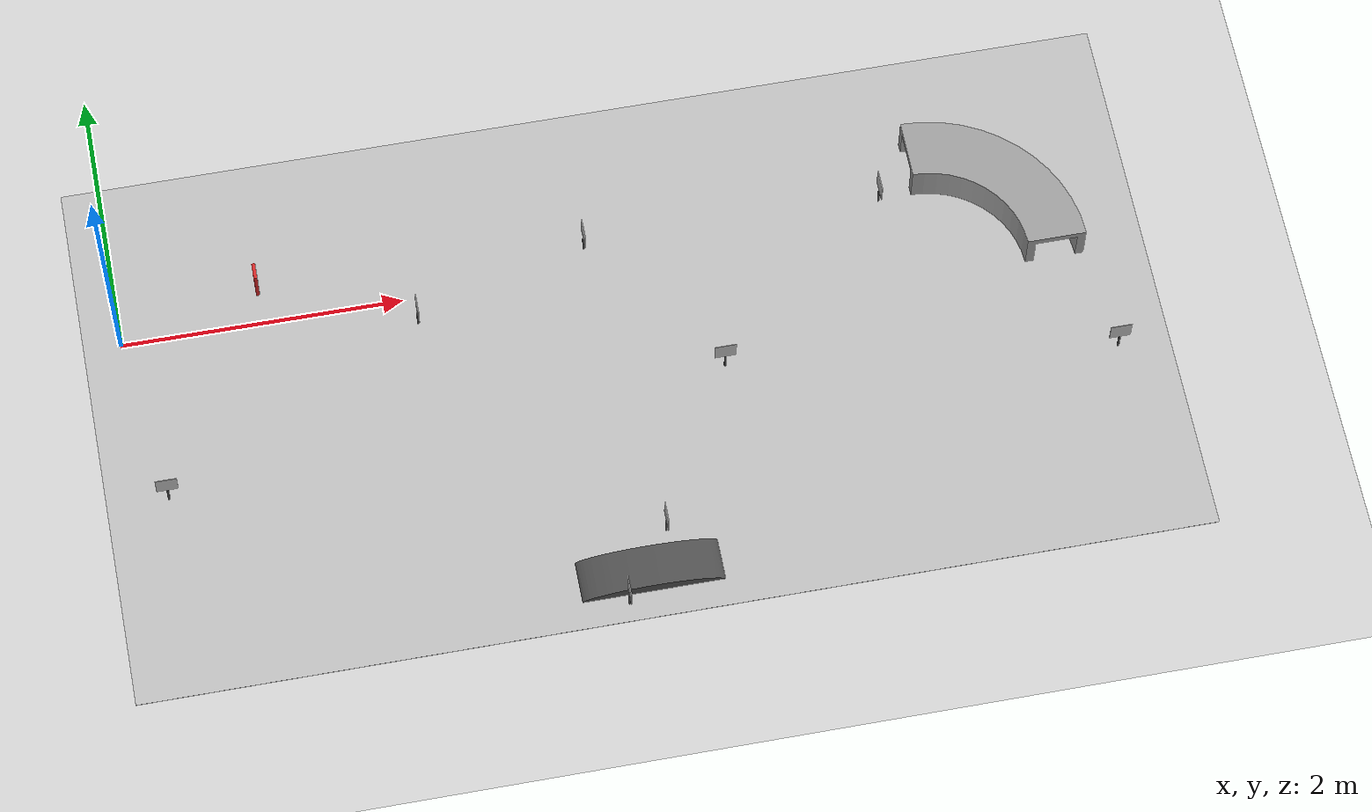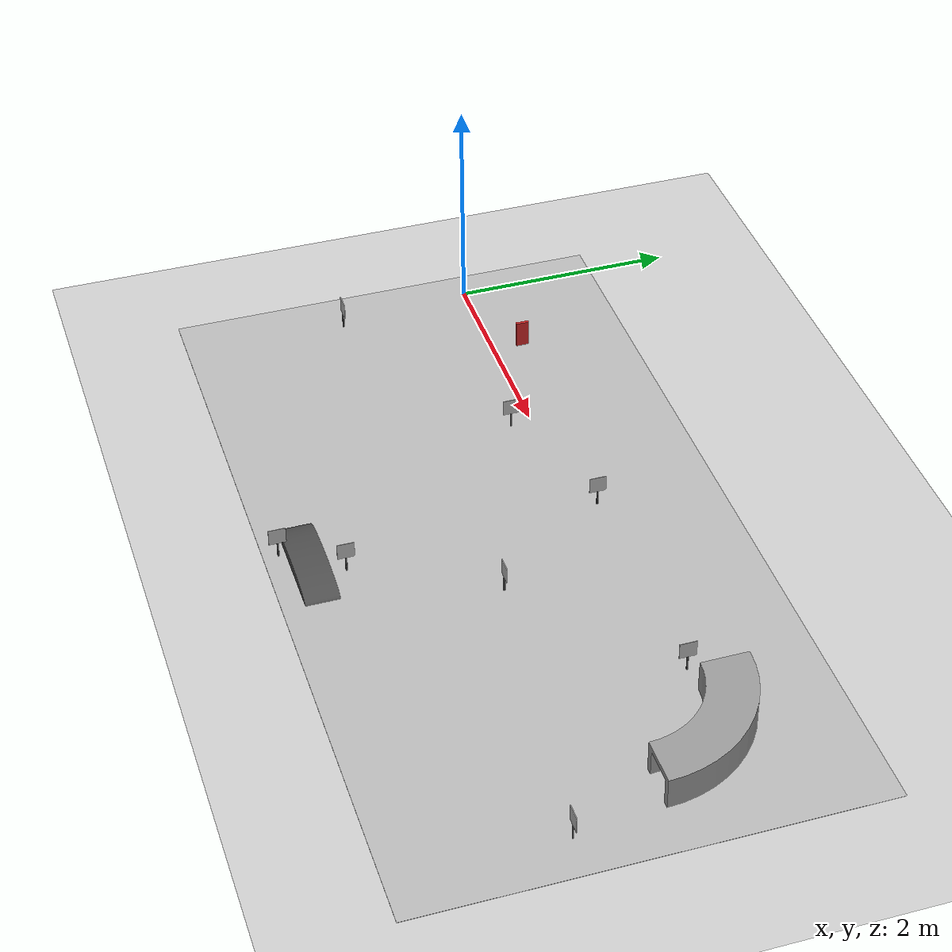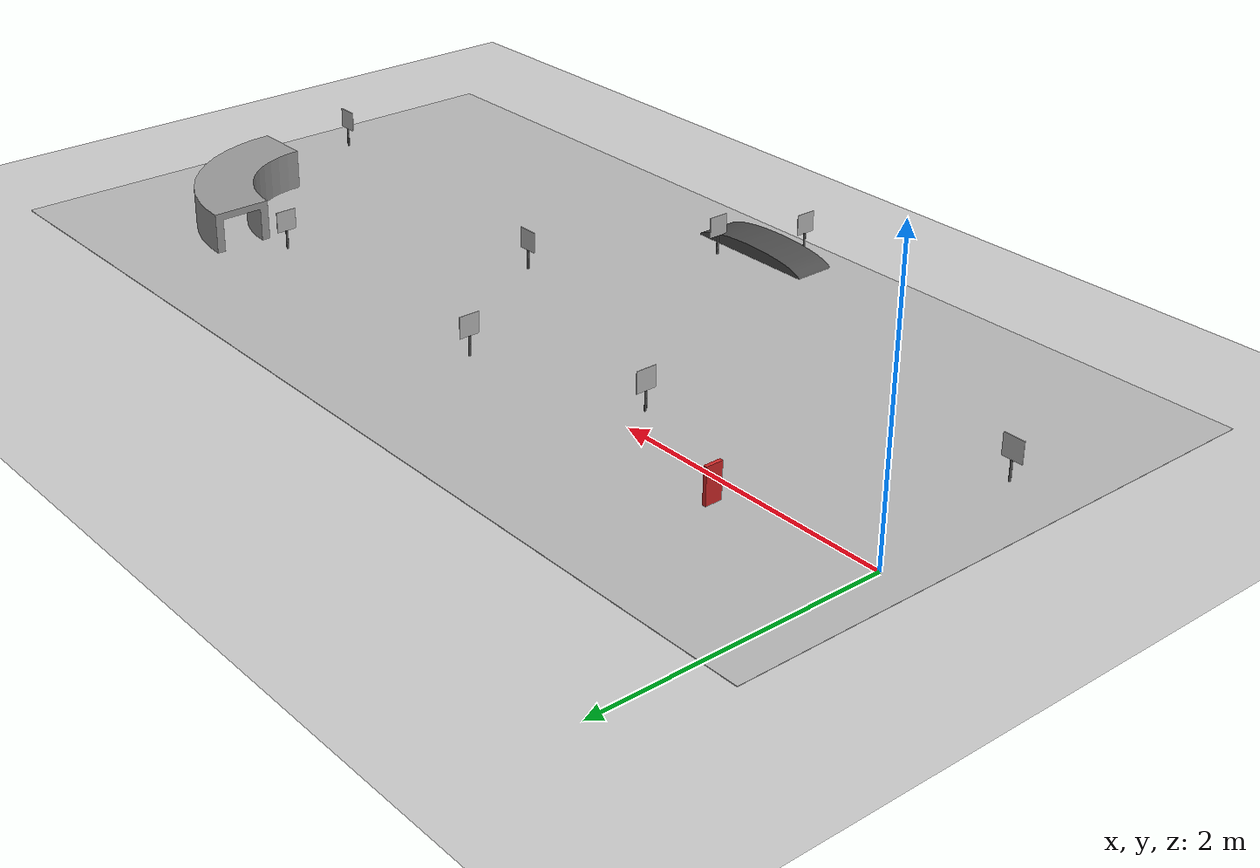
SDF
<sdf version="1.7">
 <world name="default">
  <light name="sun" type="directional">
   <pose>0 0 10 0 -0 0</pose>
   <diffuse>0.8 0.8 0.8 1</diffuse>
   <specular>0.2 0.2 0.2 1</specular>
   <attenuation>
    <range>1000</range>
    <constant>0.9</constant>
    <linear>0.01</linear>
    <quadratic>0.001</quadratic>
   </attenuation>
   <direction>-0.5 0.1 -0.9</direction>
   <spot><inner_angle>0</inner_angle><outer_angle>0</outer_angle><falloff>0</falloff></spot>
  </light>
  <model name="ground_plane">
   <static>1</static>
   <link name="link">
    <collision name="collision">
     <geometry><plane><normal>0 0 1</normal><size>100 100</size></plane></geometry>
     <surface><friction><ode><mu>100</mu><mu2>50</mu2></ode></friction></surface>
    </collision>
    <visual name="visual">
     <cast_shadows>0</cast_shadows>
     <geometry><plane><normal>0 0 1</normal><size>100 100</size></plane></geometry>
     <material>
      <script><uri>file://media/materials/scripts/gazebo.material</uri><name>Gazebo/Grey</name></script>
     </material>
    </visual>
   </link>
  </model>
  <gravity>0 0 -9.8</gravity>
  <magnetic_field>6e-06 2.3e-05 -4.2e-05</magnetic_field>
  <atmosphere type="adiabatic"/>
  <physics type="ode">
   <max_step_size>0.001</max_step_size>
   <real_time_factor>1</real_time_factor>
   <real_time_update_rate>1000</real_time_update_rate>
  </physics>
  <scene><ambient>0.4 0.4 0.4 1</ambient><background>0.7 0.7 0.7 1</background><shadows>1</shadows></scene>
  <audio><device>default</device></audio>
  <spherical_coordinates>
   <surface_model>EARTH_WGS84</surface_model>
   <latitude_deg>0</latitude_deg>
   <longitude_deg>0</longitude_deg>
   <elevation>0</elevation>
   <heading_deg>0</heading_deg>
  </spherical_coordinates>
  <model name="track_nxgv">
   <static>1</static>
   <link name="link">
    <pose>0 0 0.01 0 -0 3.14159</pose>
    <collision name="collision">
     <geometry><plane><normal>0 0 1</normal><size>7.5 4</size></plane></geometry>
     <surface><friction><ode><mu>100</mu><mu2>50</mu2></ode></friction></surface>
    </collision>
    <visual name="visual">
     <cast_shadows>0</cast_shadows>
     <geometry><plane><normal>0 0 1</normal><size>7.5 4</size></plane></geometry>
     <material>
      <script>
       <uri>model://track_nxgv/materials/scripts</uri>
       <uri>model://track_nxgv/materials/textures</uri>
       <name>CustomTrack/Diffuse</name>
      </script>
     </material>
    </visual>
   </link>
   <pose>3.48534 -0.731625 0 0 -0 0</pose>
  </model>
  <model name="custom_parking_sign">
   <static>1</static>
   <link name="link">
    <visual name="pole_visual">
     <pose>0 0 0.075 0 -0 0</pose>
     <geometry><cylinder><radius>0.008</radius><length>0.15</length></cylinder></geometry>
     <material><ambient>0.2 0.2 0.2 1</ambient><diffuse>0.3 0.3 0.3 1</diffuse></material>
    </visual>
    <collision name="pole_collision">
     <pose>0 0 0.075 0 -0 0</pose>
     <geometry><cylinder><radius>0.008</radius><length>0.15</length></cylinder></geometry>
    </collision>
    <visual name="board_visual">
     <pose>0 0 0.225 0 -0 0</pose>
     <geometry><box><size>0.005 0.15 0.15</size></box></geometry>
     <material>
      <script>
       <uri>model://custom_parking_sign/materials/scripts</uri>
       <uri>model://custom_parking_sign/materials/textures</uri>
       <name>custom_parking_mat</name>
      </script>
     </material>
    </visual>
    <collision name="board_collision">
     <pose>0 0 0.225 0 -0 0</pose>
     <geometry><box><size>0.005 0.15 0.15</size></box></geometry>
    </collision>
   </link>
   <pose>3.49036 -2.09733 0 0 -0 0</pose>
  </model>
  <model name="custom_parking_sign_2">
   <static>1</static>
   <link name="link">
    <visual name="pole_visual">
     <pose>0 0 0.075 0 -0 0</pose>
     <geometry><cylinder><radius>0.008</radius><length>0.15</length></cylinder></geometry>
     <material><ambient>0.2 0.2 0.2 1</ambient><diffuse>0.3 0.3 0.3 1</diffuse></material>
    </visual>
    <collision name="pole_collision">
     <pose>0 0 0.075 0 -0 0</pose>
     <geometry><cylinder><radius>0.008</radius><length>0.15</length></cylinder></geometry>
    </collision>
    <visual name="board_visual">
     <pose>0 0 0.225 0 -0 0</pose>
     <geometry><box><size>0.005 0.15 0.15</size></box></geometry>
     <material>
      <script>
       <uri>model://custom_parking_sign_2/materials/scripts</uri>
       <uri>model://custom_parking_sign_2/materials/textures</uri>
       <name>custom_parking_sign_2_mat</name>
      </script>
     </material>
    </visual>
    <collision name="board_collision">
     <pose>0 0 0.225 0 -0 0</pose>
     <geometry><box><size>0.005 0.15 0.15</size></box></geometry>
    </collision>
   </link>
   <pose>4.13061 -0.921458 0 0 -0 1.57</pose>
  </model>
  <model name="traffic_tunnel_3d">
   <static>1</static>
   <link name="link">
    <pose>0 0 0 0 -0 3.14159</pose>
    <collision name="collision">
     <geometry>
      <mesh><uri>model://traffic_tunnel_3d/meshes/terowong_nxgv.stl</uri><scale>0.002 0.002 0.002</scale></mesh>
     </geometry>
    </collision>
    <visual name="visual">
     <geometry>
      <mesh><uri>model://traffic_tunnel_3d/meshes/terowong_nxgv.stl</uri><scale>0.002 0.002 0.002</scale></mesh>
     </geometry>
     <material>
      <script><uri>file://media/materials/scripts/gazebo.material</uri><name>Gazebo/Grey</name></script>
     </material>
    </visual>
   </link>
   <pose>5.74025 0.041406 0 0 -0 0</pose>
  </model>
  <model name="Decend">
   <static>1</static>
   <link name="link">
    <visual name="pole_visual">
     <pose>0 0 0.075 0 -0 0</pose>
     <geometry><cylinder><radius>0.008</radius><length>0.15</length></cylinder></geometry>
     <material><ambient>0.2 0.2 0.2 1</ambient><diffuse>0.3 0.3 0.3 1</diffuse></material>
    </visual>
    <collision name="pole_collision">
     <pose>0 0 0.075 0 -0 0</pose>
     <geometry><cylinder><radius>0.008</radius><length>0.15</length></cylinder></geometry>
    </collision>
    <visual name="board_visual">
     <pose>0 0 0.225 0 -0 0</pose>
     <geometry><box><size>0.005 0.15 0.15</size></box></geometry>
     <material>
      <script>
       <uri>model://decending/materials/scripts</uri>
       <uri>model://decending/materials/textures</uri>
       <name>decending_mat</name>
      </script>
     </material>
    </visual>
    <collision name="board_collision">
     <pose>0 0 0.225 0 -0 0</pose>
     <geometry><box><size>0.005 0.15 0.15</size></box></geometry>
    </collision>
   </link>
   <pose>3.14168 -2.59639 0 0 -0 0</pose>
  </model>
  <model name="traffic_hill_3d">
   <static>1</static>
   <link name="link">
    <collision name="collision">
     <geometry>
      <mesh><uri>model://traffic_hill_3d/meshes/bukit_nxgv.stl</uri><scale>0.001 0.001 0.001</scale></mesh>
     </geometry>
    </collision>
    <visual name="visual">
     <geometry>
      <mesh><uri>model://traffic_hill_3d/meshes/bukit_nxgv.stl</uri><scale>0.001 0.001 0.001</scale></mesh>
     </geometry>
     <material>
      <script><uri>file://media/materials/scripts/gazebo.material</uri><name>Gazebo/DarkGrey</name></script>
     </material>
    </visual>
   </link>
   <pose>3.28421 -2.39496 0 0 -0 0</pose>
  </model>
  <model name="exit_tunnel">
   <static>1</static>
   <link name="link">
    <visual name="pole_visual">
     <pose>0 0 0.075 0 -0 0</pose>
     <geometry><cylinder><radius>0.008</radius><length>0.15</length></cylinder></geometry>
     <material><ambient>0.2 0.2 0.2 1</ambient><diffuse>0.3 0.3 0.3 1</diffuse></material>
    </visual>
    <collision name="pole_collision">
     <pose>0 0 0.075 0 -0 0</pose>
     <geometry><cylinder><radius>0.008</radius><length>0.15</length></cylinder></geometry>
    </collision>
    <visual name="board_visual">
     <pose>0 0 0.225 0 -0 0</pose>
     <geometry><box><size>0.005 0.15 0.15</size></box></geometry>
     <material>
      <script>
       <uri>model://exit_tunnel/materials/scripts</uri>
       <uri>model://exit_tunnel/materials/textures</uri>
       <name>exit_tunnel_mat</name>
      </script>
     </material>
    </visual>
    <collision name="board_collision">
     <pose>0 0 0.225 0 -0 0</pose>
     <geometry><box><size>0.005 0.15 0.15</size></box></geometry>
    </collision>
   </link>
   <pose>6.86639 -1.26995 0 0 -0 1.57</pose>
  </model>
  <model name="entry_tunnel">
   <static>1</static>
   <link name="link">
    <visual name="pole_visual">
     <pose>0 0 0.075 0 -0 0</pose>
     <geometry><cylinder><radius>0.008</radius><length>0.15</length></cylinder></geometry>
     <material><ambient>0.2 0.2 0.2 1</ambient><diffuse>0.3 0.3 0.3 1</diffuse></material>
    </visual>
    <collision name="pole_collision">
     <pose>0 0 0.075 0 -0 0</pose>
     <geometry><cylinder><radius>0.008</radius><length>0.15</length></cylinder></geometry>
    </collision>
    <visual name="board_visual">
     <pose>0 0 0.225 0 -0 0</pose>
     <geometry><box><size>0.005 0.15 0.15</size></box></geometry>
     <material>
      <script>
       <uri>model://entry_tunnel/materials/scripts</uri>
       <uri>model://entry_tunnel/materials/textures</uri>
       <name>entry_tunnel_mat</name>
      </script>
     </material>
    </visual>
    <collision name="board_collision">
     <pose>0 0 0.225 0 -0 0</pose>
     <geometry><box><size>0.005 0.15 0.15</size></box></geometry>
    </collision>
   </link>
   <pose>5.45851 0.178705 0 0 -0 0</pose>
  </model>
  <model name="Obstacle">
   <static>1</static>
   <link name="link">
    <visual name="pole_visual">
     <pose>0 0 0.075 0 -0 0</pose>
     <geometry><cylinder><radius>0.008</radius><length>0.15</length></cylinder></geometry>
     <material><ambient>0.2 0.2 0.2 1</ambient><diffuse>0.3 0.3 0.3 1</diffuse></material>
    </visual>
    <collision name="pole_collision">
     <pose>0 0 0.075 0 -0 0</pose>
     <geometry><cylinder><radius>0.008</radius><length>0.15</length></cylinder></geometry>
    </collision>
    <visual name="board_visual">
     <pose>0 0 0.225 0 -0 0</pose>
     <geometry><box><size>0.005 0.15 0.15</size></box></geometry>
     <material>
      <script>
       <uri>model://obstacle/materials/scripts</uri>
       <uri>model://obstacle/materials/textures</uri>
       <name>obstacle_mat</name>
      </script>
     </material>
    </visual>
    <collision name="board_collision">
     <pose>0 0 0.225 0 -0 0</pose>
     <geometry><box><size>0.005 0.15 0.15</size></box></geometry>
    </collision>
   </link>
   <pose>2.07775 -0.197751 0 0 -0 0</pose>
  </model>
  <model name="Roundabout">
   <static>1</static>
   <link name="link">
    <visual name="pole_visual">
     <pose>0 0 0.075 0 -0 0</pose>
     <geometry><cylinder><radius>0.008</radius><length>0.15</length></cylinder></geometry>
     <material><ambient>0.2 0.2 0.2 1</ambient><diffuse>0.3 0.3 0.3 1</diffuse></material>
    </visual>
    <collision name="pole_collision">
     <pose>0 0 0.075 0 -0 0</pose>
     <geometry><cylinder><radius>0.008</radius><length>0.15</length></cylinder></geometry>
    </collision>
    <visual name="board_visual">
     <pose>0 0 0.225 0 -0 0</pose>
     <geometry><box><size>0.005 0.15 0.15</size></box></geometry>
     <material>
      <script>
       <uri>model://roundabout/materials/scripts</uri>
       <uri>model://roundabout/materials/textures</uri>
       <name>roundabout_mat</name>
      </script>
     </material>
    </visual>
    <collision name="board_collision">
     <pose>0 0 0.225 0 -0 0</pose>
     <geometry><box><size>0.005 0.15 0.15</size></box></geometry>
    </collision>
   </link>
   <pose>3.32504 0.177584 0 0 -0 0</pose>
  </model>
  <model name="traffic_light">
   <static>1</static>
   <link name="link">
    <visual name="pole_visual">
     <pose>0 0 0.075 0 -0 0</pose>
     <geometry><cylinder><radius>0.008</radius><length>0.15</length></cylinder></geometry>
     <material><ambient>0.2 0.2 0.2 1</ambient><diffuse>0.3 0.3 0.3 1</diffuse></material>
    </visual>
    <collision name="pole_collision">
     <pose>0 0 0.075 0 -0 0</pose>
     <geometry><cylinder><radius>0.008</radius><length>0.15</length></cylinder></geometry>
    </collision>
    <visual name="board_visual">
     <pose>0 0 0.225 0 -0 0</pose>
     <geometry><box><size>0.005 0.15 0.15</size></box></geometry>
     <material>
      <script>
       <uri>model://traffic_light/materials/scripts</uri>
       <uri>model://traffic_light/materials/textures</uri>
       <name>traffic_light_mat</name>
      </script>
     </material>
    </visual>
    <collision name="board_collision">
     <pose>0 0 0.225 0 -0 0</pose>
     <geometry><box><size>0.005 0.15 0.15</size></box></geometry>
    </collision>
   </link>
   <pose>0.1693 -1.23894 0 0 -0 1.57</pose>
  </model>
  <model name="traffic_light_signal">
   <link name="traffic_light">
    <collision name="collision"><geometry><box><size>0.12 0.025 0.25</size></box></geometry></collision>
    <visual name="visual">
     <geometry><box><size>0.12 0.025 0.25</size></box></geometry>
     <material>
      <script>
       <uri>model://traffic_light_signal/materials/scripts</uri>
       <uri>model://traffic_light_signal/materials/textures</uri>
       <name>traffic_light_red</name>
      </script>
     </material>
    </visual>
   </link>
   <plugin name="traffic_light_plugin" filename="libtraffic_light_plugin.so"/>
   <static>1</static>
   <pose>1.0028 0.26037 0.17843 0 -0 1.57</pose>
  </model>
 </world>
</sdf>
